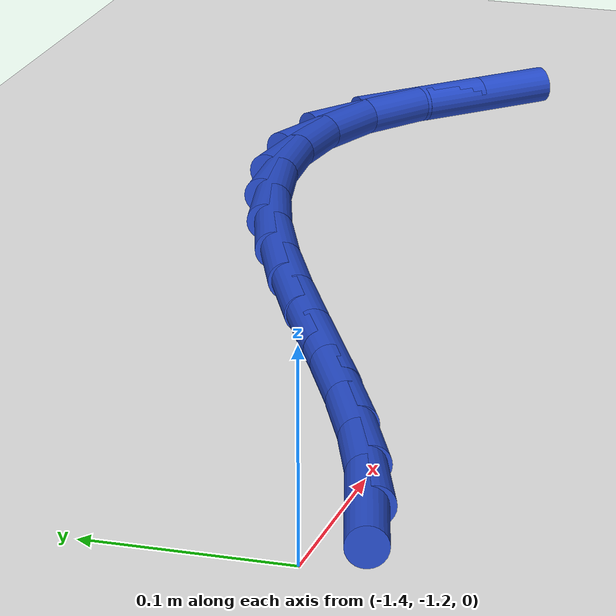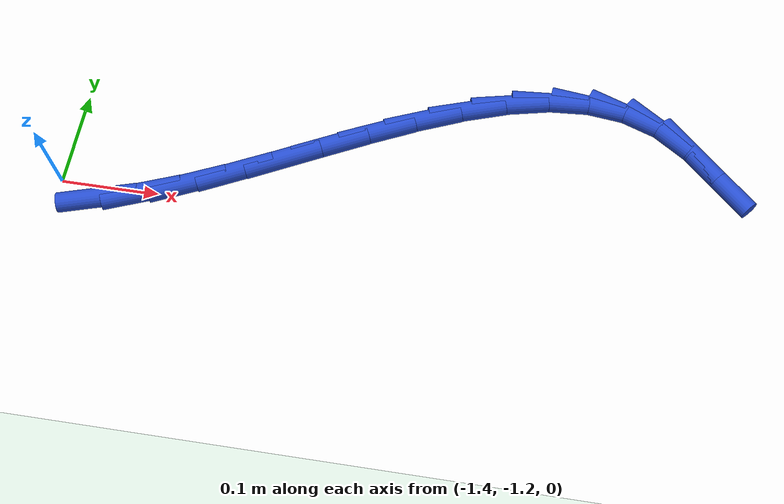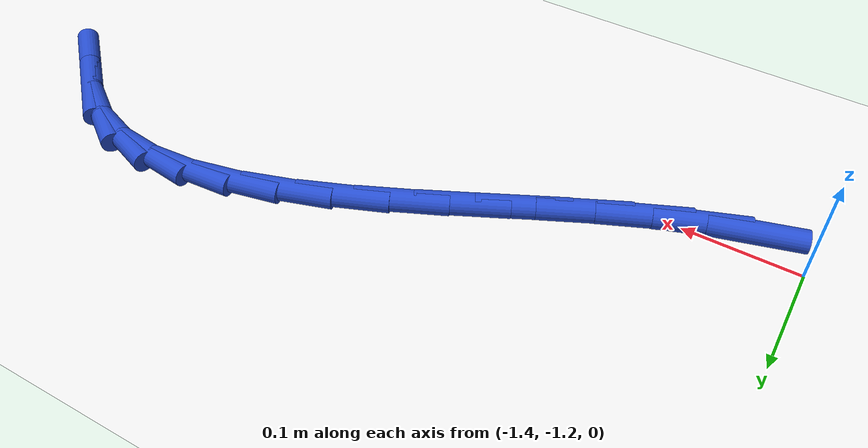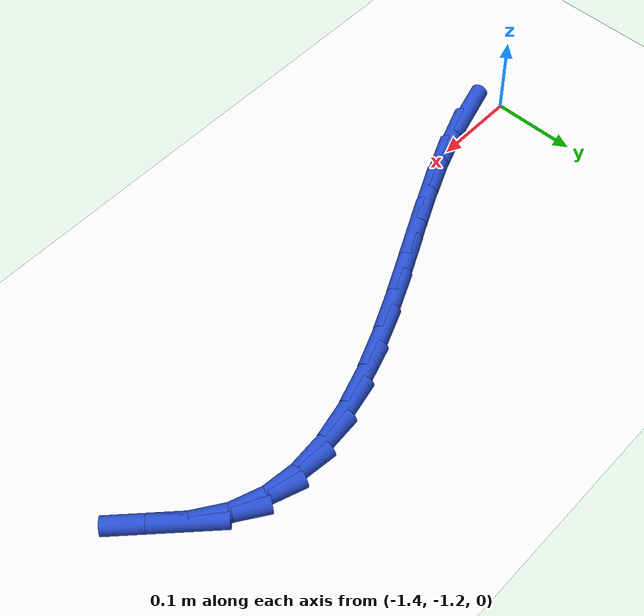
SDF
<sdf version="1.6">
 <world name="default">
  <model name="ground_plane">
   <static>1</static>
   <link name="link">
    <collision name="collision">
     <geometry><plane><normal>0 0 1</normal><size>100 100</size></plane></geometry>
     <surface><friction><ode><mu>100</mu><mu2>50</mu2></ode></friction></surface>
    </collision>
    <visual name="visual">
     <cast_shadows>0</cast_shadows>
     <geometry><plane><normal>0 0 1</normal><size>100 100</size></plane></geometry>
     <material>
      <script><uri>file://media/materials/scripts/gazebo.material</uri><name>Gazebo/WhiteGlow</name></script>
     </material>
    </visual>
   </link>
  </model>
  <model name="line">
   <link name="link_141">
    <pose>-1.3556271214887523 -1.2170858530783157 0.01 0 1.57 0.28710595125590643</pose>
    <collision name="collision">
     <geometry><cylinder><radius>0.01</radius><length>0.08</length></cylinder></geometry>
    </collision>
    <visual name="visual">
     <material>
      <script><name>Gazebo/Blue</name><uri>file://media/materials/scripts/gazebo.material</uri></script>
     </material>
     <geometry><cylinder><radius>0.01</radius><length>0.08</length></cylinder></geometry>
    </visual>
   </link>
   <link name="link_142">
    <pose>-1.3138340444012755 -1.2047458731227005 0.01 0 1.57 0.3694947312759839</pose>
    <collision name="collision">
     <geometry><cylinder><radius>0.01</radius><length>0.08</length></cylinder></geometry>
    </collision>
    <visual name="visual">
     <material>
      <script><name>Gazebo/Blue</name><uri>file://media/materials/scripts/gazebo.material</uri></script>
     </material>
     <geometry><cylinder><radius>0.01</radius><length>0.08</length></cylinder></geometry>
    </visual>
   </link>
   <link name="link_143">
    <pose>-1.2707776112252172 -1.1880708917741423 0.01 0 1.57 0.42353899771683606</pose>
    <collision name="collision">
     <geometry><cylinder><radius>0.01</radius><length>0.08</length></cylinder></geometry>
    </collision>
    <visual name="visual">
     <material>
      <script><name>Gazebo/Blue</name><uri>file://media/materials/scripts/gazebo.material</uri></script>
     </material>
     <geometry><cylinder><radius>0.01</radius><length>0.08</length></cylinder></geometry>
    </visual>
   </link>
   <link name="link_144">
    <pose>-1.2267796962907669 -1.168235573450872 0.01 0 1.57 0.4548636153414136</pose>
    <collision name="collision">
     <geometry><cylinder><radius>0.01</radius><length>0.08</length></cylinder></geometry>
    </collision>
    <visual name="visual">
     <material>
      <script><name>Gazebo/Blue</name><uri>file://media/materials/scripts/gazebo.material</uri></script>
     </material>
     <geometry><cylinder><radius>0.01</radius><length>0.08</length></cylinder></geometry>
    </visual>
   </link>
   <link name="link_145">
    <pose>-1.1821621739281138 -1.1464145825711216 0.01 0 1.57 0.4667485664460162</pose>
    <collision name="collision">
     <geometry><cylinder><radius>0.01</radius><length>0.08</length></cylinder></geometry>
    </collision>
    <visual name="visual">
     <material>
      <script><name>Gazebo/Blue</name><uri>file://media/materials/scripts/gazebo.material</uri></script>
     </material>
     <geometry><cylinder><radius>0.01</radius><length>0.08</length></cylinder></geometry>
    </visual>
   </link>
   <link name="link_146">
    <pose>-1.1372469184674443 -1.1237825835531203 0.01 0 1.57 0.4604845053536771</pose>
    <collision name="collision">
     <geometry><cylinder><radius>0.01</radius><length>0.08</length></cylinder></geometry>
    </collision>
    <visual name="visual">
     <material>
      <script><name>Gazebo/Blue</name><uri>file://media/materials/scripts/gazebo.material</uri></script>
     </material>
     <geometry><cylinder><radius>0.01</radius><length>0.08</length></cylinder></geometry>
    </visual>
   </link>
   <link name="link_147">
    <pose>-1.0923558042389474 -1.1015142408151004 0.01 0 1.57 0.4355631318278579</pose>
    <collision name="collision">
     <geometry><cylinder><radius>0.01</radius><length>0.08</length></cylinder></geometry>
    </collision>
    <visual name="visual">
     <material>
      <script><name>Gazebo/Blue</name><uri>file://media/materials/scripts/gazebo.material</uri></script>
     </material>
     <geometry><cylinder><radius>0.01</radius><length>0.08</length></cylinder></geometry>
    </visual>
   </link>
   <link name="link_148">
    <pose>-1.0478107055728119 -1.0807842187752918 0.01 0 1.57 0.38963135285651784</pose>
    <collision name="collision">
     <geometry><cylinder><radius>0.01</radius><length>0.08</length></cylinder></geometry>
    </collision>
    <visual name="visual">
     <material>
      <script><name>Gazebo/Blue</name><uri>file://media/materials/scripts/gazebo.material</uri></script>
     </material>
     <geometry><cylinder><radius>0.01</radius><length>0.08</length></cylinder></geometry>
    </visual>
   </link>
   <link name="link_149">
    <pose>-1.0039334967992262 -1.0627671818519264 0.01 0 1.57 0.31825399068557125</pose>
    <collision name="collision">
     <geometry><cylinder><radius>0.01</radius><length>0.08</length></cylinder></geometry>
    </collision>
    <visual name="visual">
     <material>
      <script><name>Gazebo/Blue</name><uri>file://media/materials/scripts/gazebo.material</uri></script>
     </material>
     <geometry><cylinder><radius>0.01</radius><length>0.08</length></cylinder></geometry>
    </visual>
   </link>
   <link name="link_150">
    <pose>-0.9610460522483784 -1.0486377944632341 0.01 0 1.57 0.21472329629755746</pose>
    <collision name="collision">
     <geometry><cylinder><radius>0.01</radius><length>0.08</length></cylinder></geometry>
    </collision>
    <visual name="visual">
     <material>
      <script><name>Gazebo/Blue</name><uri>file://media/materials/scripts/gazebo.material</uri></script>
     </material>
     <geometry><cylinder><radius>0.01</radius><length>0.08</length></cylinder></geometry>
    </visual>
   </link>
   <link name="link_151">
    <pose>-0.9194702462504571 -1.0395707210274465 0.01 0 1.57 0.07073638027022515</pose>
    <collision name="collision">
     <geometry><cylinder><radius>0.01</radius><length>0.08</length></cylinder></geometry>
    </collision>
    <visual name="visual">
     <material>
      <script><name>Gazebo/Blue</name><uri>file://media/materials/scripts/gazebo.material</uri></script>
     </material>
     <geometry><cylinder><radius>0.01</radius><length>0.08</length></cylinder></geometry>
    </visual>
   </link>
   <link name="link_152">
    <pose>-0.8795279531356516 -1.0367406259627945 0.01 0 1.57 -0.12002884813887048</pose>
    <collision name="collision">
     <geometry><cylinder><radius>0.01</radius><length>0.08</length></cylinder></geometry>
    </collision>
    <visual name="visual">
     <material>
      <script><name>Gazebo/Blue</name><uri>file://media/materials/scripts/gazebo.material</uri></script>
     </material>
     <geometry><cylinder><radius>0.01</radius><length>0.08</length></cylinder></geometry>
    </visual>
   </link>
   <link name="link_153">
    <pose>-0.8415410472341485 -1.0413221736875085 0.01 0 1.57 -0.35327810706983126</pose>
    <collision name="collision">
     <geometry><cylinder><radius>0.01</radius><length>0.08</length></cylinder></geometry>
    </collision>
    <visual name="visual">
     <material>
      <script><name>Gazebo/Blue</name><uri>file://media/materials/scripts/gazebo.material</uri></script>
     </material>
     <geometry><cylinder><radius>0.01</radius><length>0.08</length></cylinder></geometry>
    </visual>
   </link>
   <link name="link_154">
    <pose>-0.8058314028761372 -1.0544900286198198 0.01 0 1.57 -0.6046300034957149</pose>
    <collision name="collision">
     <geometry><cylinder><radius>0.01</radius><length>0.08</length></cylinder></geometry>
    </collision>
    <visual name="visual">
     <material>
      <script><name>Gazebo/Blue</name><uri>file://media/materials/scripts/gazebo.material</uri></script>
     </material>
     <geometry><cylinder><radius>0.01</radius><length>0.08</length></cylinder></geometry>
    </visual>
   </link>
   <link name="link_155">
    <pose>-0.7727135800883788 -1.0773729704453987 0.01 0 1.57 -0.7751710595195551</pose>
    <collision name="collision">
     <geometry><cylinder><radius>0.01</radius><length>0.08</length></cylinder></geometry>
    </collision>
    <visual name="visual">
     <material>
      <script><name>Gazebo/Blue</name><uri>file://media/materials/scripts/gazebo.material</uri></script>
     </material>
     <geometry><cylinder><radius>0.01</radius><length>0.08</length></cylinder></geometry>
    </visual>
   </link>
   <link name="link_156">
    <pose>-0.7419331246075428 -1.107530188282087 0.01 0 1.57 -0.7728567316497789</pose>
    <collision name="collision">
     <geometry><cylinder><radius>0.01</radius><length>0.08</length></cylinder></geometry>
    </collision>
    <visual name="visual">
     <material>
      <script><name>Gazebo/Blue</name><uri>file://media/materials/scripts/gazebo.material</uri></script>
     </material>
     <geometry><cylinder><radius>0.01</radius><length>0.08</length></cylinder></geometry>
    </visual>
   </link>
  </model>
 </world>
</sdf>
